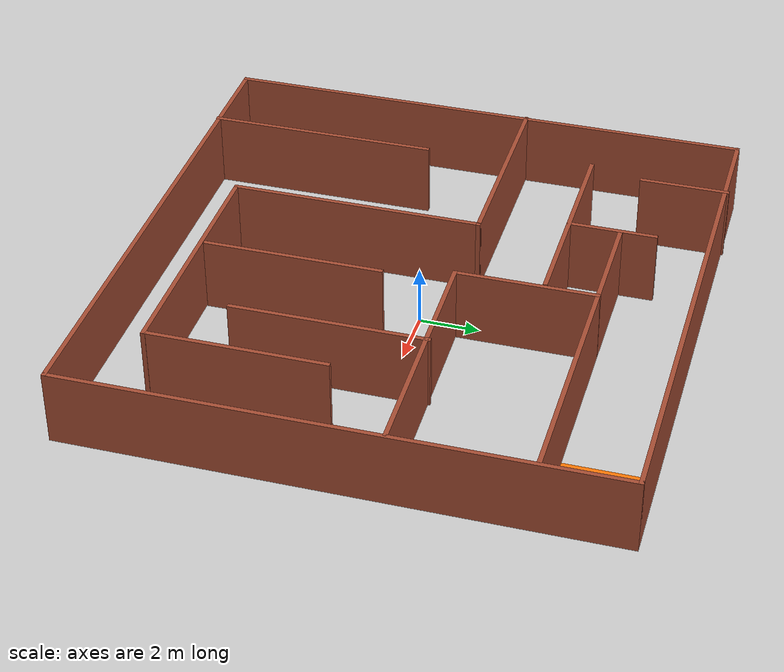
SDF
<sdf version="1.7">
 <world name="default">
  <model name="ground_plane">
   <static>1</static>
   <link name="link">
    <collision name="collision">
     <geometry><plane><normal>0 0 1</normal><size>100 100</size></plane></geometry>
     <surface><friction><ode><mu>100</mu><mu2>50</mu2></ode></friction></surface>
    </collision>
    <visual name="visual">
     <cast_shadows>0</cast_shadows>
     <geometry><plane><normal>0 0 1</normal><size>100 100</size></plane></geometry>
     <material>
      <script><uri>file://media/materials/scripts/gazebo.material</uri><name>Gazebo/Grey</name></script>
     </material>
    </visual>
   </link>
  </model>
  <light name="sun" type="directional">
   <pose>0 0 10 0 -0 0</pose>
   <diffuse>0.8 0.8 0.8 1</diffuse>
   <specular>0.2 0.2 0.2 1</specular>
   <attenuation>
    <range>1000</range>
    <constant>0.9</constant>
    <linear>0.01</linear>
    <quadratic>0.001</quadratic>
   </attenuation>
   <direction>-0.5 0.1 -0.9</direction>
   <spot><inner_angle>0</inner_angle><outer_angle>0</outer_angle><falloff>0</falloff></spot>
  </light>
  <scene><shadows>0</shadows><ambient>0.4 0.4 0.4 1</ambient><background>0.7 0.7 0.7 1</background></scene>
  <physics type="ode">
   <real_time_update_rate>1000</real_time_update_rate>
   <max_step_size>0.001</max_step_size>
   <real_time_factor>1</real_time_factor>
   <ode>
    <solver>
     <type>quick</type>
     <iters>150</iters>
     <precon_iters>0</precon_iters>
     <sor>1.4</sor>
     <use_dynamic_moi_rescaling>1</use_dynamic_moi_rescaling>
    </solver>
    <constraints>
     <cfm>1e-05</cfm>
     <erp>0.2</erp>
     <contact_max_correcting_vel>2000</contact_max_correcting_vel>
     <contact_surface_layer>0.01</contact_surface_layer>
    </constraints>
   </ode>
  </physics>
  <gravity>0 0 -9.8</gravity>
  <magnetic_field>6e-06 2.3e-05 -4.2e-05</magnetic_field>
  <atmosphere type="adiabatic"/>
  <audio><device>default</device></audio>
  <spherical_coordinates>
   <surface_model>EARTH_WGS84</surface_model>
   <latitude_deg>0</latitude_deg>
   <longitude_deg>0</longitude_deg>
   <elevation>0</elevation>
   <heading_deg>0</heading_deg>
  </spherical_coordinates>
  <model name="box_maze">
   <pose>-3953.43 -41.2029 0 0 -0 0</pose>
   <link name="Wall_17">
    <collision name="Wall_17_Collision">
     <geometry><box><size>18 0.15 2.5</size></box></geometry>
     <pose>0 0 1.25 0 -0 0</pose>
    </collision>
    <visual name="Wall_17_Visual">
     <pose>0 0 1.25 0 -0 0</pose>
     <geometry><box><size>18 0.15 2.5</size></box></geometry>
     <material>
      <script><uri>file://media/materials/scripts/gazebo.material</uri><name>Gazebo/Bricks</name></script>
      <ambient>1 1 1 1</ambient>
     </material>
     <meta><layer>0</layer></meta>
    </visual>
    <pose>3953.19 32.1293 0 0 -0 3.14159</pose>
   </link>
   <link name="Wall_18">
    <collision name="Wall_18_Collision">
     <geometry><box><size>18 0.15 2.5</size></box></geometry>
     <pose>0 0 1.25 0 -0 0</pose>
    </collision>
    <visual name="Wall_18_Visual">
     <pose>0 0 1.25 0 -0 0</pose>
     <geometry><box><size>18 0.15 2.5</size></box></geometry>
     <material>
      <script><uri>file://media/materials/scripts/gazebo.material</uri><name>Gazebo/Bricks</name></script>
      <ambient>1 1 1 1</ambient>
     </material>
     <meta><layer>0</layer></meta>
    </visual>
    <pose>3944.27 41.0543 0 0 -0 1.5708</pose>
   </link>
   <link name="Wall_19">
    <collision name="Wall_19_Collision">
     <geometry><box><size>18 0.15 2.5</size></box></geometry>
     <pose>0 0 1.25 0 -0 0</pose>
    </collision>
    <visual name="Wall_19_Visual">
     <pose>0 0 1.25 0 -0 0</pose>
     <geometry><box><size>18 0.15 2.5</size></box></geometry>
     <material>
      <script><uri>file://media/materials/scripts/gazebo.material</uri><name>Gazebo/Bricks</name></script>
      <ambient>1 1 1 1</ambient>
     </material>
     <meta><layer>0</layer></meta>
    </visual>
    <pose>3953.19 49.9793 0 0 -0 0</pose>
   </link>
   <link name="Wall_2">
    <collision name="Wall_2_Collision">
     <geometry><box><size>2309.5 0.15 2.5</size></box></geometry>
     <pose>0 0 1.25 0 -0 0</pose>
    </collision>
    <visual name="Wall_2_Visual">
     <pose>0 0 1.25 0 -0 0</pose>
     <geometry><box><size>2309.5 0.15 2.5</size></box></geometry>
     <material>
      <script><uri>file://media/materials/scripts/gazebo.material</uri><name>Gazebo/Grey</name></script>
      <ambient>1 1 1 1</ambient>
     </material>
     <meta><layer>0</layer></meta>
    </visual>
    <pose>-1907.71 2381.23 0 0 -0 2.0944</pose>
   </link>
   <link name="Wall_20">
    <collision name="Wall_20_Collision">
     <geometry><box><size>18 0.15 2.5</size></box></geometry>
     <pose>0 0 1.25 0 -0 0</pose>
    </collision>
    <visual name="Wall_20_Visual">
     <pose>0 0 1.25 0 -0 0</pose>
     <geometry><box><size>18 0.15 2.5</size></box></geometry>
     <material>
      <script><uri>file://media/materials/scripts/gazebo.material</uri><name>Gazebo/Bricks</name></script>
      <ambient>1 1 1 1</ambient>
     </material>
     <meta><layer>0</layer></meta>
    </visual>
    <pose>3962.12 41.0543 0 0 -0 -1.5708</pose>
   </link>
   <link name="Wall_22">
    <collision name="Wall_22_Collision">
     <geometry><box><size>7.75 0.15 2.5</size></box></geometry>
     <pose>0 0 1.25 0 -0 0</pose>
    </collision>
    <visual name="Wall_22_Visual">
     <pose>0 0 1.25 0 -0 0</pose>
     <geometry><box><size>7.75 0.15 2.5</size></box></geometry>
     <material>
      <script><uri>file://media/materials/scripts/gazebo.material</uri><name>Gazebo/Bricks</name></script>
      <ambient>1 1 1 1</ambient>
     </material>
     <meta><layer>0</layer></meta>
    </visual>
    <pose>3947.11 35.9034 0 0 -0 -1.5708</pose>
   </link>
   <link name="Wall_24">
    <collision name="Wall_24_Collision">
     <geometry><box><size>7 0.15 2.5</size></box></geometry>
     <pose>0 0 1.25 0 -0 0</pose>
    </collision>
    <visual name="Wall_24_Visual">
     <pose>0 0 1.25 0 -0 0</pose>
     <geometry><box><size>7 0.15 2.5</size></box></geometry>
     <material>
      <script><uri>file://media/materials/scripts/gazebo.material</uri><name>Gazebo/Bricks</name></script>
      <ambient>1 1 1 1</ambient>
     </material>
     <meta><layer>0</layer></meta>
    </visual>
    <pose>3947.65 42.5337 0 0 -0 0</pose>
   </link>
   <link name="Wall_26">
    <collision name="Wall_26_Collision">
     <geometry><box><size>8.31608 0.15 2.5</size></box></geometry>
     <pose>0 0 1.25 0 -0 0</pose>
    </collision>
    <visual name="Wall_26_Visual">
     <pose>0 0 1.25 0 -0 0</pose>
     <geometry><box><size>8.31608 0.15 2.5</size></box></geometry>
     <material>
      <script><uri>file://media/materials/scripts/gazebo.material</uri><name>Gazebo/Bricks</name></script>
      <ambient>1 1 1 1</ambient>
     </material>
     <meta><layer>0</layer></meta>
    </visual>
    <pose>3957.96 42.5335 0 0 -0 0.01511</pose>
   </link>
   <link name="Wall_28">
    <collision name="Wall_28_Collision">
     <geometry><box><size>8.5 0.15 2.5</size></box></geometry>
     <pose>0 0 1.25 0 -0 0</pose>
    </collision>
    <visual name="Wall_28_Visual">
     <pose>0 0 1.25 0 -0 0</pose>
     <geometry><box><size>8.5 0.15 2.5</size></box></geometry>
     <material>
      <script><uri>file://media/materials/scripts/gazebo.material</uri><name>Gazebo/Bricks</name></script>
      <ambient>1 1 1 1</ambient>
     </material>
     <meta><layer>0</layer></meta>
    </visual>
    <pose>3951.07 38.3587 0 0 -0 -1.5708</pose>
   </link>
   <link name="Wall_29">
    <collision name="Wall_29_Collision">
     <geometry><box><size>8.5 0.15 2.5</size></box></geometry>
     <pose>0 0 1.25 0 -0 0</pose>
    </collision>
    <visual name="Wall_29_Visual">
     <pose>0 0 1.25 0 -0 0</pose>
     <geometry><box><size>8.5 0.15 2.5</size></box></geometry>
     <material>
      <script><uri>file://media/materials/scripts/gazebo.material</uri><name>Gazebo/Bricks</name></script>
      <ambient>1 1 1 1</ambient>
     </material>
     <meta><layer>0</layer></meta>
    </visual>
    <pose>3955.25 34.1837 0 0 -0 0</pose>
   </link>
   <link name="Wall_3">
    <collision name="Wall_3_Collision">
     <geometry><box><size>2089 0.15 2.5</size></box></geometry>
     <pose>0 0 1.25 0 -0 0</pose>
    </collision>
    <visual name="Wall_3_Visual">
     <pose>0 0 1.25 0 -0 0</pose>
     <geometry><box><size>2089 0.15 2.5</size></box></geometry>
     <material>
      <script><uri>file://media/materials/scripts/gazebo.material</uri><name>Gazebo/Grey</name></script>
      <ambient>1 1 1 1</ambient>
     </material>
     <meta><layer>0</layer></meta>
    </visual>
    <pose>-3223.56 2642.69 0 0 -0 -2.35619</pose>
   </link>
   <link name="Wall_30">
    <collision name="Wall_30_Collision">
     <geometry><box><size>6 0.15 2.5</size></box></geometry>
     <pose>0 0 1.25 0 -0 0</pose>
    </collision>
    <visual name="Wall_30_Visual">
     <pose>0 0 1.25 0 -0 0</pose>
     <geometry><box><size>6 0.15 2.5</size></box></geometry>
     <material>
      <script><uri>file://media/materials/scripts/gazebo.material</uri><name>Gazebo/Bricks</name></script>
      <ambient>1 1 1 1</ambient>
     </material>
     <meta><layer>0</layer></meta>
    </visual>
    <pose>3959.42 37.1087 0 0 -0 1.5708</pose>
   </link>
   <link name="Wall_39">
    <collision name="Wall_39_Collision">
     <geometry><box><size>6.5 0.15 2.5</size></box></geometry>
     <pose>0 0 1.25 0 -0 0</pose>
    </collision>
    <visual name="Wall_39_Visual">
     <pose>0 0 1.25 0 -0 0</pose>
     <geometry><box><size>6.5 0.15 2.5</size></box></geometry>
     <material>
      <script><uri>file://media/materials/scripts/gazebo.material</uri><name>Gazebo/Bricks</name></script>
      <ambient>1 1 1 1</ambient>
     </material>
     <meta><layer>0</layer></meta>
    </visual>
    <pose>3957.45 39.4202 0 0 -0 -1.5708</pose>
   </link>
   <link name="Wall_4">
    <collision name="Wall_4_Collision">
     <geometry><box><size>1267.25 0.15 2.5</size></box></geometry>
     <pose>0 0 1.25 0 -0 0</pose>
    </collision>
    <visual name="Wall_4_Visual">
     <pose>0 0 1.25 0 -0 0</pose>
     <geometry><box><size>1267.25 0.15 2.5</size></box></geometry>
     <material>
      <script><uri>file://media/materials/scripts/gazebo.material</uri><name>Gazebo/Grey</name></script>
      <ambient>1 1 1 1</ambient>
     </material>
     <meta><layer>0</layer></meta>
    </visual>
    <pose>-3798.11 1292.21 0 0 -0 -1.309</pose>
   </link>
   <link name="Wall_41">
    <collision name="Wall_41_Collision">
     <geometry><box><size>6 0.15 2.5</size></box></geometry>
     <pose>0 0 1.25 0 -0 0</pose>
    </collision>
    <visual name="Wall_41_Visual">
     <pose>0 0 1.25 0 -0 0</pose>
     <geometry><box><size>6 0.15 2.5</size></box></geometry>
     <material>
      <script><uri>file://media/materials/scripts/gazebo.material</uri><name>Gazebo/Bricks</name></script>
      <ambient>1 1 1 1</ambient>
     </material>
     <meta><layer>0</layer></meta>
    </visual>
    <pose>3954.43 37.2755 0 0 -0 1.5708</pose>
   </link>
   <link name="Wall_43">
    <collision name="Wall_43_Collision">
     <geometry><box><size>4.75 0.15 2.5</size></box></geometry>
     <pose>0 0 1.25 0 -0 0</pose>
    </collision>
    <visual name="Wall_43_Visual">
     <pose>0 0 1.25 0 -0 0</pose>
     <geometry><box><size>4.75 0.15 2.5</size></box></geometry>
     <material>
      <script><uri>file://media/materials/scripts/gazebo.material</uri><name>Gazebo/Bricks</name></script>
      <ambient>1 1 1 1</ambient>
     </material>
     <meta><layer>0</layer></meta>
    </visual>
    <pose>3953.88 44.7718 0 0 -0 1.5708</pose>
   </link>
   <link name="Wall_44">
    <collision name="Wall_44_Collision">
     <geometry><box><size>8.25 0.15 2.5</size></box></geometry>
     <pose>0 0 1.25 0 -0 0</pose>
    </collision>
    <visual name="Wall_44_Visual">
     <pose>0 0 1.25 0 -0 0</pose>
     <geometry><box><size>8.25 0.15 2.5</size></box></geometry>
     <material>
      <script><uri>file://media/materials/scripts/gazebo.material</uri><name>Gazebo/Bricks</name></script>
      <ambient>1 1 1 1</ambient>
     </material>
     <meta><layer>0</layer></meta>
    </visual>
    <pose>3957.93 47.0718 0 0 -0 0</pose>
   </link>
   <link name="Wall_46">
    <collision name="Wall_46_Collision">
     <geometry><box><size>7.25 0.15 2.5</size></box></geometry>
     <pose>0 0 1.25 0 -0 0</pose>
    </collision>
    <visual name="Wall_46_Visual">
     <pose>0 0 1.25 0 -0 0</pose>
     <geometry><box><size>7.25 0.15 2.5</size></box></geometry>
     <material>
      <script><uri>file://media/materials/scripts/gazebo.material</uri><name>Gazebo/Bricks</name></script>
      <ambient>1 1 1 1</ambient>
     </material>
     <meta><layer>0</layer></meta>
    </visual>
    <pose>3950.15 45.364 0 0 -0 3.14159</pose>
   </link>
   <link name="Wall_50">
    <collision name="Wall_50_Collision">
     <geometry><box><size>3 0.15 2.5</size></box></geometry>
     <pose>0 0 1.25 0 -0 0</pose>
    </collision>
    <visual name="Wall_50_Visual">
     <pose>0 0 1.25 0 -0 0</pose>
     <geometry><box><size>3 0.15 2.5</size></box></geometry>
     <material>
      <script><uri>file://media/materials/scripts/gazebo.material</uri><name>Gazebo/Bricks</name></script>
      <ambient>1 1 1 1</ambient>
     </material>
     <meta><layer>0</layer></meta>
    </visual>
    <pose>3947.03 48.6172 0 0 -0 -1.5708</pose>
   </link>
   <link name="Wall_52">
    <collision name="Wall_52_Collision">
     <geometry><box><size>3 0.15 2.5</size></box></geometry>
     <pose>0 0 1.25 0 -0 0</pose>
    </collision>
    <visual name="Wall_52_Visual">
     <pose>0 0 1.25 0 -0 0</pose>
     <geometry><box><size>3 0.15 2.5</size></box></geometry>
     <material>
      <script><uri>file://media/materials/scripts/gazebo.material</uri><name>Gazebo/Bricks</name></script>
      <ambient>1 1 1 1</ambient>
     </material>
     <meta><layer>0</layer></meta>
    </visual>
    <pose>3950.23 46.7884 0 0 -0 1.5708</pose>
   </link>
   <link name="Wall_54">
    <collision name="Wall_54_Collision">
     <geometry><box><size>3.75 0.15 2.5</size></box></geometry>
     <pose>0 0 1.25 0 -0 0</pose>
    </collision>
    <visual name="Wall_54_Visual">
     <pose>0 0 1.25 0 -0 0</pose>
     <geometry><box><size>3.75 0.15 2.5</size></box></geometry>
     <material>
      <script><uri>file://media/materials/scripts/gazebo.material</uri><name>Gazebo/Bricks</name></script>
      <ambient>1 1 1 1</ambient>
     </material>
     <meta><layer>0</layer></meta>
    </visual>
    <pose>3952.08 47.0718 0 0 -0 3.14159</pose>
   </link>
   <link name="Wall_56">
    <collision name="Wall_56_Collision">
     <geometry><box><size>3.01 3 0.01</size></box></geometry>
     <pose>0 0 0.005 0 -0 0</pose>
    </collision>
    <visual name="Wall_56_Visual">
     <pose>0 0 0.005 0 -0 0</pose>
     <geometry><box><size>3.01 3 0.01</size></box></geometry>
     <material>
      <script><uri>file://media/materials/scripts/gazebo.material</uri><name>Gazebo/Grey</name></script>
      <ambient>0.996078 0.47451 0.0196078 1</ambient>
     </material>
     <meta><layer>0</layer></meta>
    </visual>
    <pose>3960.58 48.4592 0 0 -0 0</pose>
   </link>
   <link name="Wall_6">
    <collision name="Wall_6_Collision">
     <geometry><box><size>1313.25 0.15 2.5</size></box></geometry>
     <pose>0 0 1.25 0 -0 0</pose>
    </collision>
    <visual name="Wall_6_Visual">
     <pose>0 0 1.25 0 -0 0</pose>
     <geometry><box><size>1313.25 0.15 2.5</size></box></geometry>
     <material>
      <script><uri>file://media/materials/scripts/gazebo.material</uri><name>Gazebo/Grey</name></script>
      <ambient>1 1 1 1</ambient>
     </material>
     <meta><layer>0</layer></meta>
    </visual>
    <pose>-2327.46 -2747.04 0 0 -0 1.8326</pose>
   </link>
   <link name="Wall_7">
    <collision name="Wall_7_Collision">
     <geometry><box><size>2785.5 0.15 2.5</size></box></geometry>
     <pose>0 0 1.25 0 -0 0</pose>
    </collision>
    <visual name="Wall_7_Visual">
     <pose>0 0 1.25 0 -0 0</pose>
     <geometry><box><size>2785.5 0.15 2.5</size></box></geometry>
     <material>
      <script><uri>file://media/materials/scripts/gazebo.material</uri><name>Gazebo/Grey</name></script>
      <ambient>1 1 1 1</ambient>
     </material>
     <meta><layer>0</layer></meta>
    </visual>
    <pose>-1512.62 -1128.1 0 0 -0 0.785398</pose>
   </link>
   <link name="Wall_9">
    <collision name="Wall_9_Collision">
     <geometry><box><size>273 0.15 2.5</size></box></geometry>
     <pose>0 0 1.25 0 -0 0</pose>
    </collision>
    <visual name="Wall_9_Visual">
     <pose>0 0 1.25 0 -0 0</pose>
     <geometry><box><size>273 0.15 2.5</size></box></geometry>
     <material>
      <script><uri>file://media/materials/scripts/gazebo.material</uri><name>Gazebo/Grey</name></script>
      <ambient>1 1 1 1</ambient>
     </material>
     <meta><layer>0</layer></meta>
    </visual>
    <pose>2376.13 -389.523 0 0 -0 1.5708</pose>
   </link>
   <link name="Window_0">
    <collision name="Window_0_Collision">
     <geometry><box><size>0.8 0.17 0.8</size></box></geometry>
     <pose>0 0 0.4 0 -0 0</pose>
    </collision>
    <visual name="Window_0_Visual">
     <pose>0 0 0.4 0 -0 0</pose>
     <geometry><box><size>0.8 0.17 0.8</size></box></geometry>
     <material>
      <script><uri>file://media/materials/scripts/gazebo.material</uri><name>Gazebo/Grey</name></script>
     </material>
    </visual>
    <pose>2332.76 217.554 0.5 0 -0 0</pose>
   </link>
   <static>1</static>
  </model>
 </world>
</sdf>
